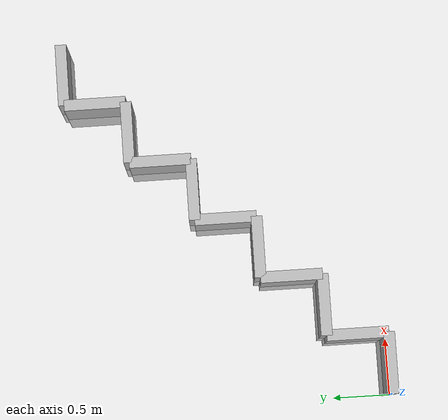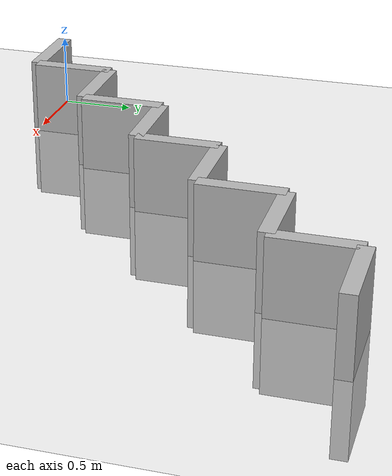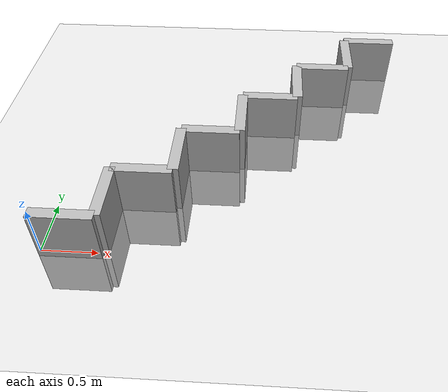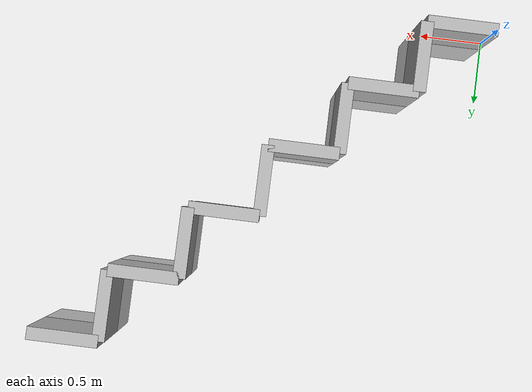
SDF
<?xml version="1.0" ?>
<sdf version="1.6">
  <world name="default">
    <include>
      <uri>model://ground_plane</uri>
    </include>
    <include>
      <uri>model://sun</uri>
    </include>

    <model name="wall_0">
      <static>true</static>
      <link name="link">
        <pose>0.2727272727272727 0 0 0 0 0</pose>
        <collision name="collision">
          <geometry>
            <box>
              <size>0.5454545454545454 0.1 1.0</size>
            </box>
          </geometry>
        </collision>
        <visual name="visual">
          <geometry>
            <box>
              <size>0.5454545454545454 0.1 1.0</size>
            </box>
          </geometry>
        </visual>
      </link>
    </model>

    <model name="wall_1">
      <static>true</static>
      <link name="link">
        <pose>0.5454545454545454 0.2727272727272727 0 0 0 1.57</pose>
        <collision name="collision">
          <geometry>
            <box>
              <size>0.5454545454545454 0.1 1.0</size>
            </box>
          </geometry>
        </collision>
        <visual name="visual">
          <geometry>
            <box>
              <size>0.5454545454545454 0.1 1.0</size>
            </box>
          </geometry>
        </visual>
      </link>
    </model>

    <model name="wall_2">
      <static>true</static>
      <link name="link">
        <pose>0.8181818181818181 0.5454545454545454 0 0 0 0</pose>
        <collision name="collision">
          <geometry>
            <box>
              <size>0.5454545454545454 0.1 1.0</size>
            </box>
          </geometry>
        </collision>
        <visual name="visual">
          <geometry>
            <box>
              <size>0.5454545454545454 0.1 1.0</size>
            </box>
          </geometry>
        </visual>
      </link>
    </model>

    <model name="wall_3">
      <static>true</static>
      <link name="link">
        <pose>1.0909090909090908 0.8181818181818181 0 0 0 1.57</pose>
        <collision name="collision">
          <geometry>
            <box>
              <size>0.5454545454545454 0.1 1.0</size>
            </box>
          </geometry>
        </collision>
        <visual name="visual">
          <geometry>
            <box>
              <size>0.5454545454545454 0.1 1.0</size>
            </box>
          </geometry>
        </visual>
      </link>
    </model>

    <model name="wall_4">
      <static>true</static>
      <link name="link">
        <pose>1.3636363636363635 1.0909090909090908 0 0 0 0</pose>
        <collision name="collision">
          <geometry>
            <box>
              <size>0.5454545454545454 0.1 1.0</size>
            </box>
          </geometry>
        </collision>
        <visual name="visual">
          <geometry>
            <box>
              <size>0.5454545454545454 0.1 1.0</size>
            </box>
          </geometry>
        </visual>
      </link>
    </model>

    <model name="wall_5">
      <static>true</static>
      <link name="link">
        <pose>1.6363636363636362 1.3636363636363635 0 0 0 1.57</pose>
        <collision name="collision">
          <geometry>
            <box>
              <size>0.5454545454545454 0.1 1.0</size>
            </box>
          </geometry>
        </collision>
        <visual name="visual">
          <geometry>
            <box>
              <size>0.5454545454545454 0.1 1.0</size>
            </box>
          </geometry>
        </visual>
      </link>
    </model>

    <model name="wall_6">
      <static>true</static>
      <link name="link">
        <pose>1.909090909090909 1.6363636363636362 0 0 0 0</pose>
        <collision name="collision">
          <geometry>
            <box>
              <size>0.5454545454545454 0.1 1.0</size>
            </box>
          </geometry>
        </collision>
        <visual name="visual">
          <geometry>
            <box>
              <size>0.5454545454545454 0.1 1.0</size>
            </box>
          </geometry>
        </visual>
      </link>
    </model>

    <model name="wall_7">
      <static>true</static>
      <link name="link">
        <pose>2.1818181818181817 1.909090909090909 0 0 0 1.57</pose>
        <collision name="collision">
          <geometry>
            <box>
              <size>0.5454545454545454 0.1 1.0</size>
            </box>
          </geometry>
        </collision>
        <visual name="visual">
          <geometry>
            <box>
              <size>0.5454545454545454 0.1 1.0</size>
            </box>
          </geometry>
        </visual>
      </link>
    </model>

    <model name="wall_8">
      <static>true</static>
      <link name="link">
        <pose>2.454545454545454 2.1818181818181817 0 0 0 0</pose>
        <collision name="collision">
          <geometry>
            <box>
              <size>0.5454545454545454 0.1 1.0</size>
            </box>
          </geometry>
        </collision>
        <visual name="visual">
          <geometry>
            <box>
              <size>0.5454545454545454 0.1 1.0</size>
            </box>
          </geometry>
        </visual>
      </link>
    </model>

    <model name="wall_9">
      <static>true</static>
      <link name="link">
        <pose>2.7272727272727266 2.454545454545454 0 0 0 1.57</pose>
        <collision name="collision">
          <geometry>
            <box>
              <size>0.5454545454545454 0.1 1.0</size>
            </box>
          </geometry>
        </collision>
        <visual name="visual">
          <geometry>
            <box>
              <size>0.5454545454545454 0.1 1.0</size>
            </box>
          </geometry>
        </visual>
      </link>
    </model>

    <model name="wall_10">
      <static>true</static>
      <link name="link">
        <pose>2.999999999999999 2.7272727272727266 0 0 0 0</pose>
        <collision name="collision">
          <geometry>
            <box>
              <size>0.5454545454545454 0.1 1.0</size>
            </box>
          </geometry>
        </collision>
        <visual name="visual">
          <geometry>
            <box>
              <size>0.5454545454545454 0.1 1.0</size>
            </box>
          </geometry>
        </visual>
      </link>
    </model>

  </world>
</sdf>
